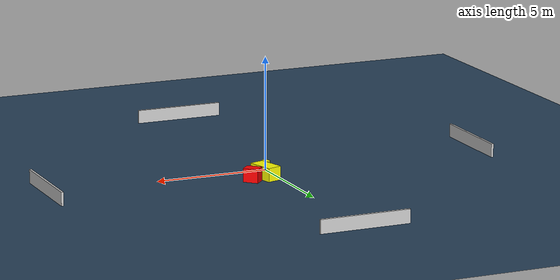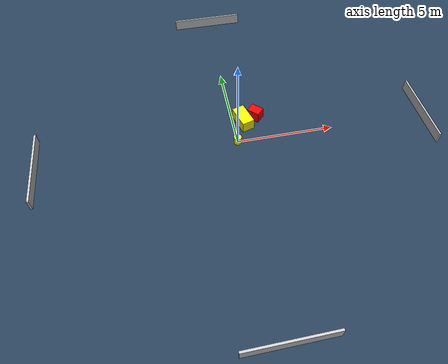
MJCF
<?xml version="1.0" ?>
<mujoco model="generated_environment">
  <option timestep="0.01" integrator="RK4" cone="elliptic"/>
  <default>
    <geom density="1"/>
  </default>
  <asset>
    <texture builtin="gradient" height="3072" name="skybox" rgb1="0.3 0.5 0.7" rgb2="0 0 0" type="skybox" width="512"/>
    <texture builtin="checker" height="300" name="groundplane" rgb1="0.2 0.3 0.4" rgb2="0.1 0.2 0.3" type="2d" width="300"/>
    <material name="groundplane" reflectance="0.2" texrepeat="5 5" texture="groundplane"/>
  </asset>
  <worldbody>
    <light dir="0 0 -1" directional="true" pos="0 0 1.5"/>
    <geom condim="3" friction="0.5 0.005 0.001" material="groundplane" name="floor" pos="0 0 0" size="0 0 0.05" type="plane"/>
    <body name="walls">
      <geom name="wall_1" condim="4" pos="-10.0 0.0 0.3" rgba="0.800000011920929 0.800000011920929 0.800000011920929 1.0" size="0.05 2.0 0.3" type="box"/>
      <geom name="wall_2" condim="4" pos="10.0 0.0 0.3" rgba="0.800000011920929 0.800000011920929 0.800000011920929 1.0" size="0.05 2.0 0.3" type="box"/>
      <geom name="wall_3" condim="4" pos="0.0 -10.0 0.3" rgba="0.800000011920929 0.800000011920929 0.800000011920929 1.0" size="2.0 0.05 0.3" type="box"/>
      <geom name="wall_4" condim="4" pos="0.0 10.0 0.3" rgba="0.800000011920929 0.800000011920929 0.800000011920929 1.0" size="2.0 0.05 0.3" type="box"/>
    </body>
    <body name="robot">
      <joint name="joint_x" type="slide" pos="0 0 0" axis="1 0 0"/>
      <joint name="joint_y" type="slide" pos="0 0 0" axis="0 1 0"/>
      <geom name="robot" type="cylinder" pos="0.0 0.0 0.2" size="0.2 0.2 0.0" mass="5.0" friction="1.0 0.005 0.0001" condim="4" rgba="1.0 1.0 0.0 1.0"/>
    </body>
    <body name="obstacle_1_movable">
      <geom name="obstacle_1_movable" condim="4" pos="0.5430404105476655 1.273665212346642 0.3" euler="0 0 106.5610663437347" friction="0.0 0.005 0.001" rgba="1.0 1.0 0.0 1.0" size="0.6092692918691267 0.32942386333018814 0.3" type="box" mass="0.1"/>
      <joint type="free"/>
    </body>
    <body name="obstacle_2_static">
      <geom name="obstacle_2_static" condim="4" pos="1.2562863746522501 1.5249258147049878 0.3" euler="0 0 315.4108051013448" friction="0.0 0.005 0.001" rgba="1.0 0.0 0.0 1.0" size="0.33507914983870185 0.2619414416974874 0.3" type="box"/>
    </body>
  </worldbody>
  <actuator>
    <motor name="actuator_x" joint="joint_x" gear="1" ctrlrange="-1 1"/>
    <motor name="actuator_y" joint="joint_y" gear="1" ctrlrange="-1 1"/>
  </actuator>
</mujoco>
